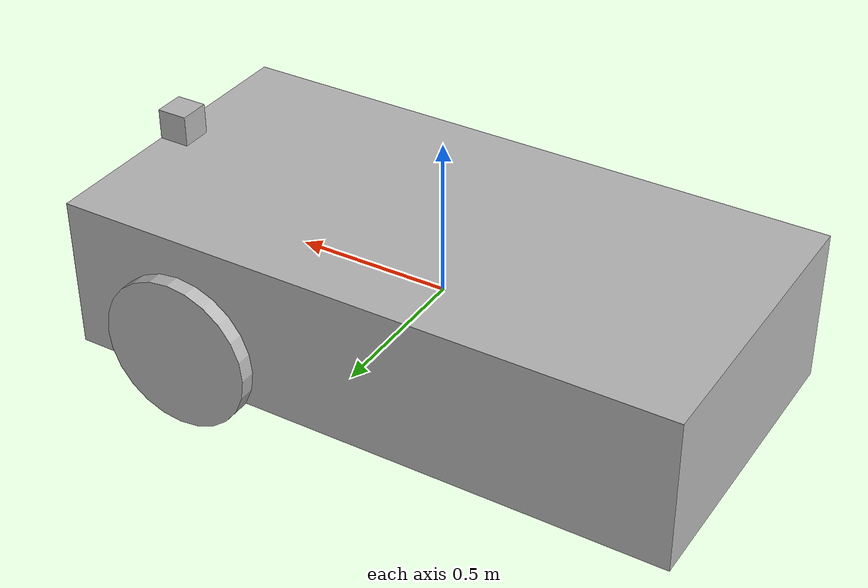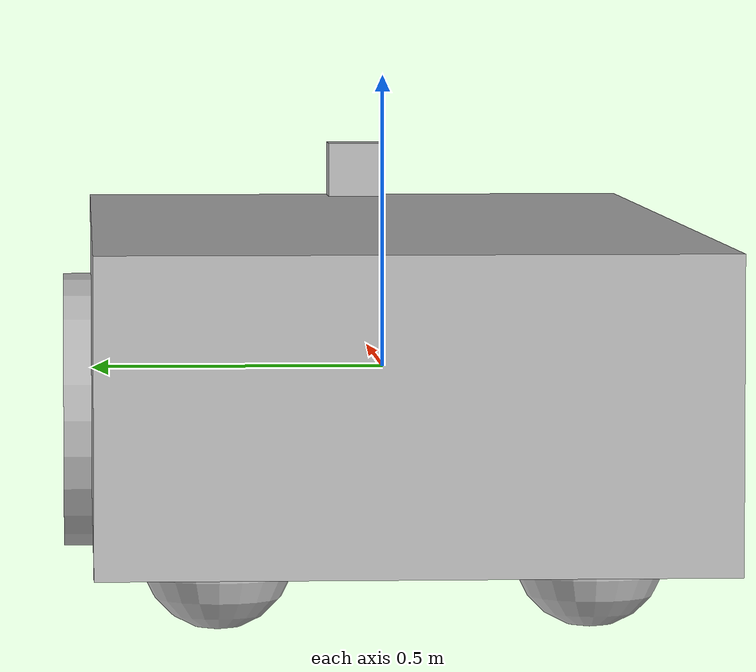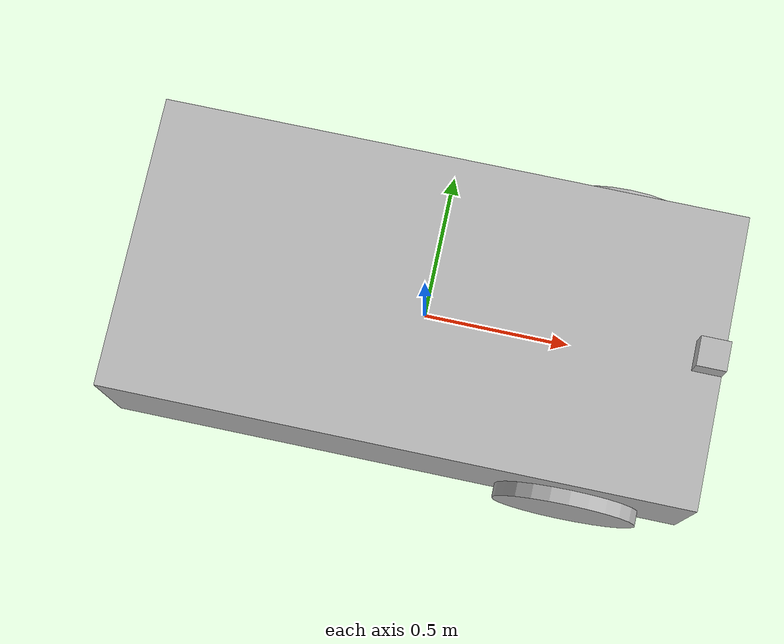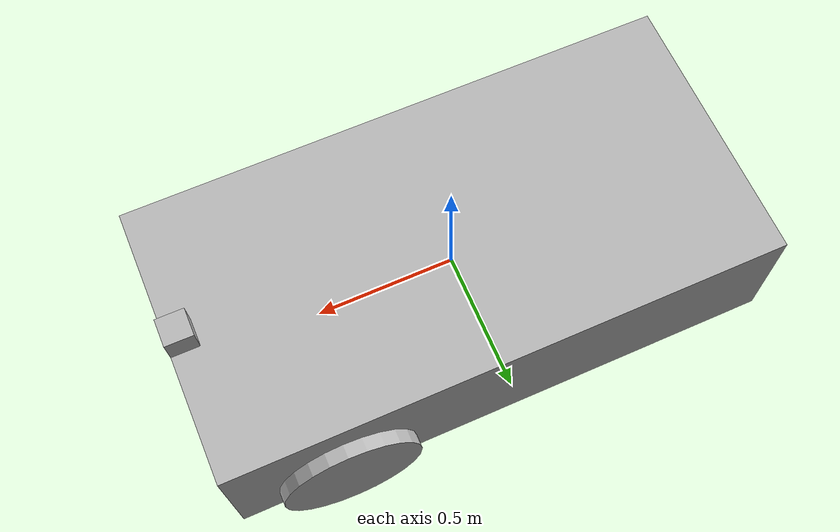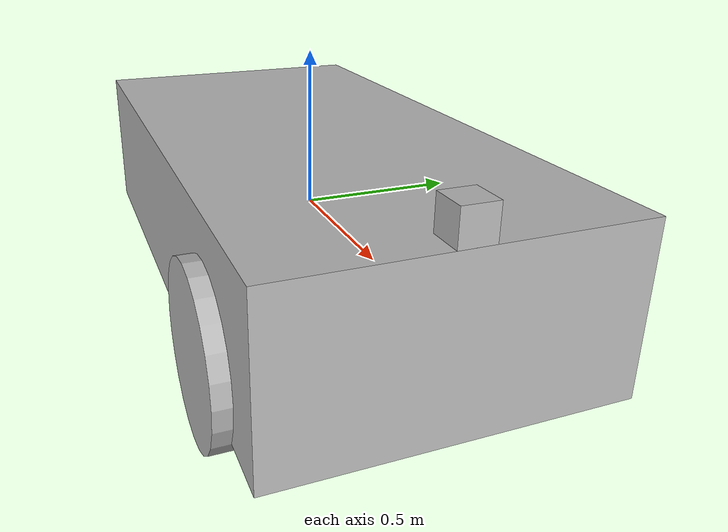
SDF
<?xml version="1.0" ?>
<sdf version='1.7'>
    <model name='2wheel_drive_car'>
        <link name='car_body::link'>
            <inertial>
                <pose>0.009406 0 0.00297 0 -0 0</pose>
                <mass>10.1</mass>
                <inertia>
                    <ixx>0.529911</ixx>
                    <ixy>0</ixy>
                    <ixz>-0.0282178</ixz>
                    <iyy>1.86927</iyy>
                    <iyz>0</iyz>
                    <izz>2.17286</izz>
                </inertia>
            </inertial>
            <collision name='car_body::link_fixed_joint_lump__car_body_collision'>
                <pose>0 0 0 0 -0 0</pose>
                <geometry>
                    <box>
                        <size>2 1 0.5</size>
                    </box>
                </geometry>
                <surface>
                    <contact>
                        <ode/>
                    </contact>
                    <friction>
                        <ode/>
                    </friction>
                </surface>
            </collision>
            <collision name='car_body::link_fixed_joint_lump__car_camera_collision_1'>
                <pose>0.95 0 0.3 0 -0 3.14</pose>
                <geometry>
                    <box>
                        <size>0.1 0.1 0.1</size>
                    </box>
                </geometry>
                <surface>
                    <contact>
                        <ode/>
                    </contact>
                    <friction>
                        <ode/>
                    </friction>
                </surface>
            </collision>
            <visual name='car_body::link_fixed_joint_lump__car_body_visual'>
                <pose>0 0 0 0 -0 0</pose>
                <geometry>
                    <box>
                        <size>2 1 0.5</size>
                    </box>
                </geometry>
                <material>
                    <script>
                        <name>diffuse</name>
                        <uri>file://media/materials/scripts/gazebo.material</uri>
                    </script>
                </material>
            </visual>
            <visual name='car_body::link_fixed_joint_lump__car_camera_visual_1'>
                <pose>0.95 0 0.3 0 -0 3.14</pose>
                <geometry>
                    <box>
                        <size>0.1 0.1 0.1</size>
                    </box>
                </geometry>
                <material>
                    <script>
                        <name>diffuse</name>
                        <uri>file://media/materials/scripts/gazebo.material</uri>
                    </script>
                </material>
            </visual>
            <sensor name='car_camera' type='camera'>
                <update_rate>24</update_rate>
                <visualize>1</visualize>
                <camera name='head'>
                    <horizontal_fov>1.39626</horizontal_fov>
                    <image>
                        <width>640</width>
                        <height>480</height>
                        <format>R8G8B8</format>
                    </image>
                    <clip>
                        <near>0.02</near>
                        <far>300</far>
                    </clip>
                </camera>
                <plugin name='camera_controller' filename='libgazebo_ros_camera.so'>
                    <ros>
                        <argument>--ros-args --remap image_raw:=image_raw</argument>
                        <argument>--ros-args --remap camera_info:=camera_info</argument>
                    </ros>
                </plugin>
                <pose>0.95 0 0.3 0 -0 0</pose>
            </sensor>
        </link>
        <joint name='front_left_wheel_2_body' type='revolute'>
            <pose relative_to='car_body::link'>0.6 0.5 -0.125 -1.5708 0 0</pose>
            <parent>car_body::link</parent>
            <child>front_left_wheel</child>
            <axis>
                <xyz>0 0 1</xyz>
                <limit>
                    <lower>-1e+16</lower>
                    <upper>1e+16</upper>
                </limit>
                <dynamics>
                    <damping>0</damping>
                    <friction>0.5</friction>
                    <spring_reference>0</spring_reference>
                    <spring_stiffness>0</spring_stiffness>
                </dynamics>
            </axis>
        </joint>
        <link name='front_left_wheel'>
            <pose relative_to='front_left_wheel_2_body'>0 0 0 0 -0 0</pose>
            <inertial>
                <pose>0 0 0 0 -0 0</pose>
                <mass>0.5</mass>
                <inertia>
                    <ixx>0.00822917</ixx>
                    <ixy>0</ixy>
                    <ixz>0</ixz>
                    <iyy>0.00822917</iyy>
                    <iyz>0</iyz>
                    <izz>0.015625</izz>
                </inertia>
            </inertial>
            <collision name='front_left_wheel_collision'>
                <pose>0 0 0 0 -0 0</pose>
                <geometry>
                    <cylinder>
                        <length>0.1</length>
                        <radius>0.25</radius>
                    </cylinder>
                </geometry>
                <surface>
                    <contact>
                        <ode/>
                    </contact>
                    <friction>
                        <ode/>
                    </friction>
                </surface>
            </collision>
            <visual name='front_left_wheel_visual'>
                <pose>0 0 0 0 -0 0</pose>
                <geometry>
                    <cylinder>
                        <length>0.1</length>
                        <radius>0.25</radius>
                    </cylinder>
                </geometry>
                <material>
                    <script>
                        <name>diffuse</name>
                        <uri>file://media/materials/scripts/gazebo.material</uri>
                    </script>
                </material>
            </visual>
        </link>
        <joint name='front_right_wheel_2_body' type='revolute'>
            <pose relative_to='car_body::link'>0.6 -0.5 -0.125 -1.5708 0 0</pose>
            <parent>car_body::link</parent>
            <child>front_right_wheel</child>
            <axis>
                <xyz>0 0 1</xyz>
                <limit>
                    <lower>-1e+16</lower>
                    <upper>1e+16</upper>
                </limit>
                <dynamics>
                    <damping>0</damping>
                    <friction>0.5</friction>
                    <spring_reference>0</spring_reference>
                    <spring_stiffness>0</spring_stiffness>
                </dynamics>
            </axis>
        </joint>
        <link name='front_right_wheel'>
            <pose relative_to='front_right_wheel_2_body'>0 0 0 0 -0 0</pose>
            <inertial>
                <pose>0 0 0 0 -0 0</pose>
                <mass>0.5</mass>
                <inertia>
                    <ixx>0.00822917</ixx>
                    <ixy>0</ixy>
                    <ixz>0</ixz>
                    <iyy>0.00822917</iyy>
                    <iyz>0</iyz>
                    <izz>0.015625</izz>
                </inertia>
            </inertial>
            <collision name='front_right_wheel_collision'>
                <pose>0 0 0 0 -0 0</pose>
                <geometry>
                    <cylinder>
                        <length>0.1</length>
                        <radius>0.25</radius>
                    </cylinder>
                </geometry>
                <surface>
                    <contact>
                        <ode/>
                    </contact>
                    <friction>
                        <ode/>
                    </friction>
                </surface>
            </collision>
            <visual name='front_right_wheel_visual'>
                <pose>0 0 0 0 -0 0</pose>
                <geometry>
                    <cylinder>
                        <length>0.1</length>
                        <radius>0.25</radius>
                    </cylinder>
                </geometry>
                <material>
                    <script>
                        <name>diffuse</name>
                        <uri>file://media/materials/scripts/gazebo.material</uri>
                    </script>
                </material>
            </visual>
        </link>
        <joint name='rear_left_ball_wheel_2_body' type='revolute'>
            <pose relative_to='car_body::link'>-0.6 0.3 -0.25 0 -0 0</pose>
            <parent>car_body::link</parent>
            <child>rear_left_ball_wheel</child>
            <axis>
                <xyz>0 1 0</xyz>
                <limit>
                    <lower>-1e+16</lower>
                    <upper>1e+16</upper>
                </limit>
                <dynamics>
                    <damping>0</damping>
                    <friction>0.5</friction>
                    <spring_reference>0</spring_reference>
                    <spring_stiffness>0</spring_stiffness>
                </dynamics>
            </axis>
        </joint>
        <link name='rear_left_ball_wheel'>
            <pose relative_to='rear_left_ball_wheel_2_body'>0 0 0 0 -0 0</pose>
            <inertial>
                <pose>0 0 0 0 -0 0</pose>
                <mass>0.5</mass>
                <inertia>
                    <ixx>0.003125</ixx>
                    <ixy>0</ixy>
                    <ixz>0</ixz>
                    <iyy>0.003125</iyy>
                    <iyz>0</iyz>
                    <izz>0.003125</izz>
                </inertia>
            </inertial>
            <collision name='rear_left_ball_wheel_collision'>
                <pose>0 0 0 0 -0 0</pose>
                <geometry>
                    <sphere>
                        <radius>0.125</radius>
                    </sphere>
                </geometry>
                <surface>
                    <contact>
                        <ode/>
                    </contact>
                    <friction>
                        <ode/>
                    </friction>
                </surface>
            </collision>
            <visual name='rear_left_ball_wheel_visual'>
                <pose>0 0 0 0 -0 0</pose>
                <geometry>
                    <sphere>
                        <radius>0.125</radius>
                    </sphere>
                </geometry>
                <material>
                    <script>
                        <name>diffuse</name>
                        <uri>file://media/materials/scripts/gazebo.material</uri>
                    </script>
                </material>
            </visual>
        </link>
        <joint name='rear_right_ball_wheel_2_body' type='revolute'>
            <pose relative_to='car_body::link'>-0.6 -0.3 -0.25 0 -0 0</pose>
            <parent>car_body::link</parent>
            <child>rear_right_ball_wheel</child>
            <axis>
                <xyz>0 1 0</xyz>
                <limit>
                    <lower>-1e+16</lower>
                    <upper>1e+16</upper>
                </limit>
                <dynamics>
                    <damping>0</damping>
                    <friction>0.5</friction>
                    <spring_reference>0</spring_reference>
                    <spring_stiffness>0</spring_stiffness>
                </dynamics>
            </axis>
        </joint>
        <link name='rear_right_ball_wheel'>
            <pose relative_to='rear_right_ball_wheel_2_body'>0 0 0 0 -0 0</pose>
            <inertial>
                <pose>0 0 0 0 -0 0</pose>
                <mass>0.5</mass>
                <inertia>
                    <ixx>0.003125</ixx>
                    <ixy>0</ixy>
                    <ixz>0</ixz>
                    <iyy>0.003125</iyy>
                    <iyz>0</iyz>
                    <izz>0.003125</izz>
                </inertia>
            </inertial>
            <collision name='rear_right_ball_wheel_collision'>
                <pose>0 0 0 0 -0 0</pose>
                <geometry>
                    <sphere>
                        <radius>0.125</radius>
                    </sphere>
                </geometry>
                <surface>
                    <contact>
                        <ode/>
                    </contact>
                    <friction>
                        <ode/>
                    </friction>
                </surface>
            </collision>
            <visual name='rear_right_ball_wheel_visual'>
                <pose>0 0 0 0 -0 0</pose>
                <geometry>
                    <sphere>
                        <radius>0.125</radius>
                    </sphere>
                </geometry>
                <material>
                    <script>
                        <name>diffuse</name>
                        <uri>file://media/materials/scripts/gazebo.material</uri>
                    </script>
                </material>
            </visual>
        </link>
        <static>0</static>
        <plugin name='two_wheeled_robot_diff_drive' filename='libgazebo_ros_diff_drive.so'>
            <num_wheel_pairs>1</num_wheel_pairs>
            <left_joint>front_left_wheel_2_body</left_joint>
            <right_joint>front_right_wheel_2_body</right_joint>
            <wheel_separation>1</wheel_separation>
            <wheel_diameter>0.5</wheel_diameter>
            <max_wheel_torque>20</max_wheel_torque>
            <publish_odom>1</publish_odom>
            <publish_odom_tf>1</publish_odom_tf>
            <odometry_frame>start_loc_map</odometry_frame>
            <robot_base_frame>car_body::link</robot_base_frame>
        </plugin>
    </model>
</sdf>
